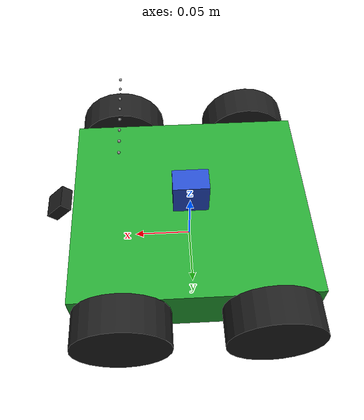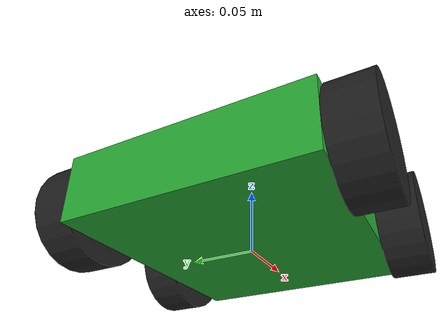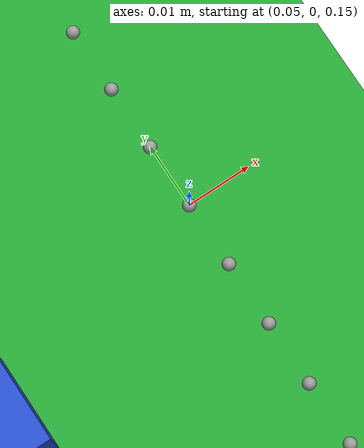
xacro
<?xml version="1.0"?>
<robot xmlns:xacro="http://www.ros.org/wiki/xacro" name="awd_robot">

    <xacro:include filename="utils.urdf.xacro" />
    <xacro:include filename="awdbot/awdbot_include.xacro" />

    <!-- Start GZ or Ignition depending on ROS 2 Version -->
    <xacro:arg name="is_ignition" default="true"/>

    <!-- Load Simulated or Real Hardware Interfaces -->
    <xacro:arg name="is_sim" default="true"/>

    <xacro:arg name="port_name"  default="/dev/ttyACM0"/>
    <xacro:arg name="baud_rate"  default="57600"/>

    <xacro:arg name="dxl1_id" default="1"/>
    <xacro:arg name="dxl2_id" default="2"/>
    <xacro:arg name="dxl3_id" default="3"/>
    <xacro:arg name="dxl4_id" default="4"/>

    <!-- Include Gazebo Parameters -->
    <xacro:include filename="awdbot/awdbot_gazebo.xacro" />

    <!-- Include ros2_control Plugins -->
    <xacro:include filename="awdbot/awdbot_ros2_control.xacro" />

    <link name="base_footprint"/>

    <joint name="base_joint" type="fixed">
        <parent link="base_footprint" />
        <child link="base_link" />
        <origin rpy="0 0 0" xyz="0 0 ${chassis_height/2}" />
    </joint>

    <link name="base_link">
        <xacro:box_inertial name="base_link" m="${chassis_mass}" x="${chassis_length}" y="${chassis_width}" z="${chassis_height}" />
        <collision name="chassis_collision">
            <geometry>
                <box size="${chassis_length} ${chassis_width} ${chassis_height}" />
            </geometry>
        </collision>
        <visual name="base_link_visual">
            <origin xyz="0 0 0" rpy=" 0 0 0" />
            <geometry>
                <box size="${chassis_length} ${chassis_width} ${chassis_height}" />
            </geometry>
            <material name="green"/>
        </visual>
    </link>
    <link name="wheel_front_right">
        <xacro:cylinder_inertial name="wheel_front_right" m="${wheel_mass}" r="${wheel_radius}" h="${wheel_width}" />
        <collision name="wheel_FR_collision">
            <origin xyz="0 0 0" rpy="1.5708 0 0" />
            <geometry>
                <cylinder radius="${wheel_radius}" length="${wheel_width}" />
            </geometry>
        </collision>
        <visual name="wheel_FR_visual">
            <origin xyz="0 0 0" rpy="1.5708 0 0" />
            <geometry>
                <cylinder radius="${wheel_radius}" length="${wheel_width}" />
            </geometry>
            <material name="black"/>
        </visual>
    </link>
    <link name="wheel_front_left">
        <xacro:cylinder_inertial name="wheel_front_left" m="${wheel_mass}" r="${wheel_radius}" h="${wheel_width}" />
        <collision name="wheel_FL_collision">
            <origin xyz="0 0 0" rpy="1.5708 0 0" />
            <geometry>
                <cylinder radius="${wheel_radius}" length="${wheel_width}" />
            </geometry>
        </collision>
        <visual name="wheel_FL_visual">
            <origin xyz="0 0 0" rpy="1.5708 0 0" />
            <geometry>
                <cylinder radius="${wheel_radius}" length="${wheel_width}" />
            </geometry>
            <material name="black"/>
        </visual>
    </link>
    <link name="wheel_rear_right">
        <xacro:cylinder_inertial name="wheel_rear_right" m="${wheel_mass}" r="${wheel_radius}" h="${wheel_width}" />
        <collision name="wheel_RR_collision">
            <origin xyz="0 0 0" rpy="1.5708 0 0" />
            <geometry>
                <cylinder radius="${wheel_radius}" length="${wheel_width}" />
            </geometry>
        </collision>
        <visual name="wheel_RR_visual">
            <origin xyz="0 0 0" rpy="1.5708 0 0" />
            <geometry>
                <cylinder radius="${wheel_radius}" length="${wheel_width}" />
            </geometry>
            <material name="black"/>
        </visual>
    </link>
    <link name="wheel_rear_left">
        <xacro:cylinder_inertial name="wheel_rear_left" m="${wheel_mass}" r="${wheel_radius}" h="${wheel_width}" />
        <collision name="wheel_RL_collision">
            <origin xyz="0 0 0" rpy="1.5708 0 0" />
            <geometry>
                <cylinder radius="${wheel_radius}" length="${wheel_width}" />
            </geometry>
        </collision>
        <visual name="wheel_RL_visual">
            <origin xyz="0 0 0" rpy="1.5708 0 0" />
            <geometry>
                <cylinder radius="${wheel_radius}" length="${wheel_width}" />
            </geometry>
            <material name="black"/>
        </visual>
    </link>

    <link name="base_scan">
      <xacro:box_inertial name="base_scan" m="${lidar_mass}" x="${lidar_width}" y="${lidar_length}" z="${lidar_height}" />
        <collision name="lidar_sensor_collision">
            <origin xyz="0 0 ${-lidar_height/2+0.01}" rpy="0 0 0" />
            <geometry>
                <box size="${lidar_length} ${lidar_width} ${lidar_height}" />
            </geometry>
        </collision>
        <visual name="lidar_sensor_visual">
            <origin xyz="0 0 ${-lidar_height/2+0.01}" rpy="0 0 0" />
            <geometry>
                <box size="${lidar_length} ${lidar_width} ${lidar_height}" />
            </geometry>
            <material name="blue"/>
        </visual>
    </link>

    <link name="camera_link">
        <xacro:box_inertial name="camera_link" m="${camera_mass}" x="${camera_width}" y="${camera_length}" z="${camera_height}" />
        <visual>
            <geometry>
                <box size="${camera_width} ${camera_length} ${camera_height}"/>
            </geometry>
        </visual>
        <collision>
            <geometry>
                <box size="${camera_width} ${camera_length} ${camera_height}" />
            </geometry>
        </collision>
        <inertial>
            <mass value="0.0"/>
            <origin xyz="0.0 0.0 0.0" rpy="0.0 0.0 0.0"/>
            <inertia ixx="0.0" ixy="0.0" ixz="0.0" iyy="0.0" iyz="0.0" izz="0.0"/>
        </inertial>
    </link>

    <joint name="wheel_front_right_joint" type="continuous">
        <parent link="base_link" />
        <child link="wheel_front_right" />
        <origin xyz="${chassis_length/2-wheel_radius} -${chassis_width/2+wheel_width/2} 0" rpy="0 0 0" />
        <axis xyz="0 1 0" />
    </joint>
    <joint name="wheel_front_left_joint" type="continuous">
        <parent link="base_link" />
        <child link="wheel_front_left" />
        <origin xyz="${chassis_length/2-wheel_radius} ${chassis_width/2+wheel_width/2} 0" rpy="0 0 0" />
        <axis xyz="0 1 0" />
    </joint>
    <joint name="wheel_rear_right_joint" type="continuous">
        <parent link="base_link" />
        <child link="wheel_rear_right" />
        <origin xyz="-${chassis_length/2-wheel_radius} -${chassis_width/2+wheel_width/2} 0" rpy="0 0 0" />
        <axis xyz="0 1 0" />
    </joint>
    <joint name="wheel_rear_left_joint" type="continuous">
        <parent link="base_link" />
        <child link="wheel_rear_left" />
        <origin xyz="-${chassis_length/2-wheel_radius} ${chassis_width/2+wheel_width/2} 0" rpy="0 0 0" />
        <axis xyz="0 1 0" />
    </joint>

    <joint name="camera_joint" type="fixed">
        <parent link="base_link"/>
        <child link="camera_link"/>
        <origin xyz="${chassis_length/2+0.01} 0 ${chassis_height/2+camera_height/2}" rpy="0 0.8 0"/>
        <axis xyz="0 0 0"/>
    </joint>

    <joint name="lidar_joint" type="fixed">
      <parent link="base_link"/>
      <child link="base_scan"/>
      <origin xyz="0 0 ${chassis_height/2 + lidar_height-0.01}" rpy="0 0 0"/>
      <axis xyz="0 0 1"/>
    </joint>

    <xacro:include filename="awdbot/light.xacro"/>

    <xacro:led_strip8_with_lights
      side="R" parent="base_link"
      x="${chassis_length/2-0.05}" y="-0.04" z="${chassis_height/2+0.1}" dx="0.01"
      on_color="1.0 1.0 1.0 1.0" off_color="0.0 0.0 0.0 1.0"
      light_range="0.5"
      on0="1" on1="1" on2="1" on3="1" on4="1" on5="1" on6="1" on7="1"
      light_direction="0 0 0"
      light_rpy="${-45*3.141/180} 0 ${90*3.141/180}"/>

</robot>

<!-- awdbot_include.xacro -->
<robot xmlns:xacro="http://www.ros.org/wiki/xacro" name="awd_robot">

    <xacro:property name="camera_width" value="0.02" />
    <xacro:property name="camera_length" value="0.02" />
    <xacro:property name="camera_height" value="0.01" />
    <xacro:property name="camera_mass" value="0.01" />
    <xacro:property name="chassis_width" value="0.18" />
    <xacro:property name="chassis_length" value="0.2" />
    <xacro:property name="chassis_height" value="0.05" />
    <xacro:property name="chassis_mass" value="0.5" />
    <xacro:property name="wheel_radius" value="0.04" />
    <xacro:property name="wheel_width" value="0.03" />
    <xacro:property name="wheel_mass" value="0.025" />
	<xacro:property name="lidar_width" value="0.02" />
    <xacro:property name="lidar_length" value="0.03" />
    <xacro:property name="lidar_height" value="0.03" />
    <xacro:property name="lidar_mass" value="0.01" />

</robot>

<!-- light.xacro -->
<robot xmlns:xacro="http://www.ros.org/wiki/xacro">
  <!-- Defaults -->
  <xacro:property name="led_radius_default" value="0.001"/>
  <xacro:property name="led_on_color_default"  value="0.5 0.5 0.5 1"/>
  <xacro:property name="led_off_color_default" value="0 0 0 1"/>
  <xacro:property name="led_range_default"     value="0.1"/>
  <xacro:property name="led_intensity_default" value="0.1"/>
  <xacro:property name="led_direction_default" value="0 0 0"/>
  <xacro:property name="led_rpy_default" value="0 0 0"/>

  <!-- Einzel-LED mit Light -->
  <xacro:macro name="led_with_light" params="
    name parent x y z
    radius:=${led_radius_default}
    emissive_rgba:=${led_on_color_default}
    light_rgba:=${led_on_color_default}
    light_range:=${led_range_default}
    light_intensity:=${led_intensity_default}
    light_direction:=${led_direction_default}
    light_rpy:=${led_rpy_default}
    ">

    <link name="${name}">
      <inertial>
        <origin xyz="${x} ${y} ${z}" rpy="0 0 0"/>
        <mass value="5e-5"/>
        <inertia
          ixx="7.2e-10" ixy="0.0" ixz="0.0"
          iyy="7.2e-10" iyz="0.0"
          izz="7.2e-10"/>
      </inertial>
      <visual>
        <origin xyz="${x} ${y} ${z}" rpy="0 0 0"/>
        <geometry><sphere radius="${radius}"/></geometry>
        <material name="grey"/>
      </visual>
      <collision>
        <origin xyz="${x} ${y} ${z}" rpy="0 0 0"/>
        <geometry><sphere radius="${radius}"/></geometry>
      </collision>
    </link>

    <joint name="${name}_fixed" type="fixed">
      <parent link="${parent}"/>
      <child link="${name}"/>
      <origin xyz="0 0 0" rpy="0 0 0"/>
    </joint>

    <!-- Gazebo-Materialerweiterung (SDF): hier ist emissive gültig -->

    <!-- Gazebo-Light am LED-Link -->
    <gazebo reference="${name}">
      <light type="spot" name="${name}_light">
        <pose>${x} ${y} ${z} ${light_rpy}</pose>
        <diffuse>${light_rgba}</diffuse>
        <specular>${light_rgba}</specular>
        <attenuation>
          <range>${light_range}</range>
          <constant>0.5</constant>
          <linear>0.02</linear>
          <quadratic>0.001</quadratic>
        </attenuation>
        <cast_shadows>false</cast_shadows>
        <intensity>${light_intensity}</intensity>

        <direction>${light_direction}</direction>
        <spot>
        <inner_angle>${90 * 3.14159265/180.0}</inner_angle>
        <outer_angle>${100 * 3.14159265/180.0}</outer_angle>
        <falloff>1.0</falloff>
        </spot>
      </light>
    </gazebo>
  </xacro:macro>

  <!-- 8er-Strip -->
  <xacro:macro name="led_strip8_with_lights" params="
      side parent
      x y z dx
      radius:=${led_radius_default}
      on_color:=${led_on_color_default}
      off_color:=${led_off_color_default}
      light_range:=${led_range_default}
      light_direction:=${led_direction_default}
      light_intensity:=${led_intensity_default}
      light_rpy:=${led_rpy_default}
      on0:=1 on1:=1 on2:=1 on3:=1 on4:=1 on5:=1 on6:=1 on7:=1">

    <!-- Helper für eine LED i -->
    <xacro:macro name="one_led_idx" params="i on_flag">
      <xacro:property name="yy" value="${y + i*dx}"/>
      <!-- String -> Bool: '1', 'true', 'True' => True -->
      <xacro:property name="is_on" value="${str(on_flag) in ['1','true','True']}"/>
      <xacro:property name="em" value="${ on_color if is_on else off_color }"/>
      <xacro:property name="inten" value="${ 1.0 if is_on else 0.0 }"/>

      <xacro:led_with_light
          name="LED_${side}_${i}"
          parent="${parent}"
          x="${x}"
          y="${yy}"
          z="${z}"
          radius="${radius}"
          emissive_rgba="${em}"
          light_rgba="${em}"
          light_range="${light_range}"
          light_intensity="${inten}"
          light_direction="${light_direction}"
          light_rpy="${light_rpy}"/>
    </xacro:macro>

    <!-- 8 LEDs -->
    <xacro:one_led_idx i="0" on_flag="${on0}"/>
    <xacro:one_led_idx i="1" on_flag="${on1}"/>
    <xacro:one_led_idx i="2" on_flag="${on2}"/>
    <xacro:one_led_idx i="3" on_flag="${on3}"/>
    <xacro:one_led_idx i="4" on_flag="${on4}"/>
    <xacro:one_led_idx i="5" on_flag="${on5}"/>
    <xacro:one_led_idx i="6" on_flag="${on6}"/>
    <xacro:one_led_idx i="7" on_flag="${on7}"/>
  </xacro:macro>

</robot>
